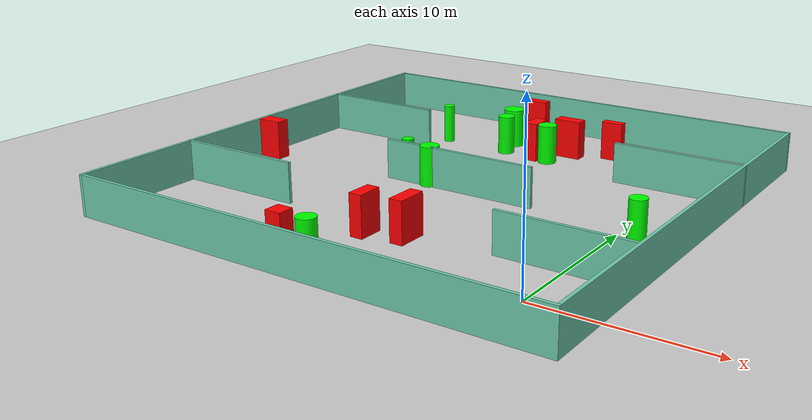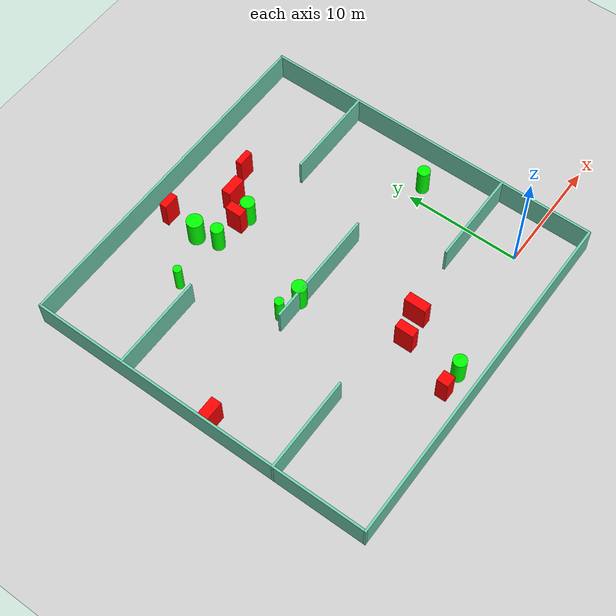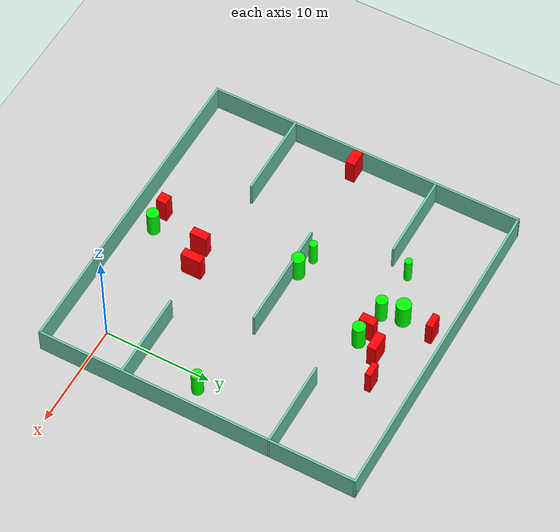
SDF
<sdf version="1.7">
 <world name="default">
  <light name="sun" type="directional">
   <pose>0 0 10 0 -0 0</pose>
   <diffuse>0.8 0.8 0.8 1</diffuse>
   <specular>0.2 0.2 0.2 1</specular>
   <attenuation>
    <range>1000</range>
    <constant>0.9</constant>
    <linear>0.01</linear>
    <quadratic>0.001</quadratic>
   </attenuation>
   <direction>-0.5 0.1 -0.9</direction>
   <spot><inner_angle>0</inner_angle><outer_angle>0</outer_angle><falloff>0</falloff></spot>
  </light>
  <model name="ground_plane">
   <static>1</static>
   <link name="link">
    <collision name="collision">
     <geometry><plane><normal>0 0 1</normal><size>100 100</size></plane></geometry>
     <surface>
      <contact><collide_bitmask>65535</collide_bitmask></contact>
      <friction><ode><mu>100</mu><mu2>50</mu2></ode></friction>
     </surface>
    </collision>
    <visual name="visual">
     <cast_shadows>0</cast_shadows>
     <geometry><plane><normal>0 0 1</normal><size>100 100</size></plane></geometry>
     <material>
      <script><uri>file://media/materials/scripts/gazebo.material</uri><name>Gazebo/Grey</name></script>
     </material>
    </visual>
   </link>
  </model>
  <gravity>0 0 -9.8</gravity>
  <magnetic_field>6e-06 2.3e-05 -4.2e-05</magnetic_field>
  <atmosphere type="adiabatic"/>
  <physics type="ode">
   <max_step_size>0.001</max_step_size>
   <real_time_factor>1</real_time_factor>
   <real_time_update_rate>1000</real_time_update_rate>
  </physics>
  <scene><ambient>0.4 0.4 0.4 1</ambient><background>0.7 0.7 0.7 1</background><shadows>1</shadows></scene>
  <spherical_coordinates>
   <surface_model>EARTH_WGS84</surface_model>
   <latitude_deg>0</latitude_deg>
   <longitude_deg>0</longitude_deg>
   <elevation>0</elevation>
   <heading_deg>0</heading_deg>
  </spherical_coordinates>
  <model name="my_base_walls">
   <link name="Wall_10">
    <collision name="Wall_10_Collision">
     <geometry><box><size>8.2 0.2 2.5</size></box></geometry>
     <pose>0 0 1.25 0 -0 0</pose>
    </collision>
    <visual name="Wall_10_Visual">
     <pose>0 0 1.25 0 -0 0</pose>
     <geometry><box><size>8.2 0.2 2.5</size></box></geometry>
     <material>
      <script><uri>file://media/materials/scripts/gazebo.material</uri><name>Gazebo/Grey</name></script>
      <ambient>0.435294 0.796078 0.67451 1</ambient>
     </material>
     <meta><layer>0</layer></meta>
    </visual>
    <pose>-11 -7 0 0 -0 0</pose>
   </link>
   <link name="Wall_12">
    <collision name="Wall_12_Collision">
     <geometry><box><size>8.2 0.2 2.5</size></box></geometry>
     <pose>0 0 1.25 0 -0 0</pose>
    </collision>
    <visual name="Wall_12_Visual">
     <pose>0 0 1.25 0 -0 0</pose>
     <geometry><box><size>8.2 0.2 2.5</size></box></geometry>
     <material>
      <script><uri>file://media/materials/scripts/gazebo.material</uri><name>Gazebo/Grey</name></script>
      <ambient>0.435294 0.796078 0.67451 1</ambient>
     </material>
     <meta><layer>0</layer></meta>
    </visual>
    <pose>-11 7 0 0 -0 0</pose>
   </link>
   <link name="Wall_14">
    <collision name="Wall_14_Collision">
     <geometry><box><size>8.2 0.2 2.5</size></box></geometry>
     <pose>0 0 1.25 0 -0 0</pose>
    </collision>
    <visual name="Wall_14_Visual">
     <pose>0 0 1.25 0 -0 0</pose>
     <geometry><box><size>8.2 0.2 2.5</size></box></geometry>
     <material>
      <script><uri>file://media/materials/scripts/gazebo.material</uri><name>Gazebo/Grey</name></script>
      <ambient>0.435294 0.796078 0.67451 1</ambient>
     </material>
     <meta><layer>0</layer></meta>
    </visual>
    <pose>11 7 0 0 -0 3.14159</pose>
   </link>
   <link name="Wall_16">
    <collision name="Wall_16_Collision">
     <geometry><box><size>10.2 0.2 2.5</size></box></geometry>
     <pose>0 0 1.25 0 -0 0</pose>
    </collision>
    <visual name="Wall_16_Visual">
     <pose>0 0 1.25 0 -0 0</pose>
     <geometry><box><size>10.2 0.2 2.5</size></box></geometry>
     <material>
      <script><uri>file://media/materials/scripts/gazebo.material</uri><name>Gazebo/Grey</name></script>
      <ambient>0.435294 0.796078 0.67451 1</ambient>
     </material>
     <meta><layer>0</layer></meta>
    </visual>
    <pose>0 0 0 0 -0 3.14159</pose>
   </link>
   <link name="Wall_2">
    <collision name="Wall_2_Collision">
     <geometry><box><size>30.2 0.2 2.5</size></box></geometry>
     <pose>0 0 1.25 0 -0 0</pose>
    </collision>
    <visual name="Wall_2_Visual">
     <pose>0 0 1.25 0 -0 0</pose>
     <geometry><box><size>30.2 0.2 2.5</size></box></geometry>
     <material>
      <script><uri>file://media/materials/scripts/gazebo.material</uri><name>Gazebo/Grey</name></script>
      <ambient>0.435294 0.796078 0.67451 1</ambient>
     </material>
     <meta><layer>0</layer></meta>
    </visual>
    <pose>0 -15 0 0 -0 3.14159</pose>
   </link>
   <link name="Wall_3">
    <collision name="Wall_3_Collision">
     <geometry><box><size>30.2 0.2 2.5</size></box></geometry>
     <pose>0 0 1.25 0 -0 0</pose>
    </collision>
    <visual name="Wall_3_Visual">
     <pose>0 0 1.25 0 -0 0</pose>
     <geometry><box><size>30.2 0.2 2.5</size></box></geometry>
     <material>
      <script><uri>file://media/materials/scripts/gazebo.material</uri><name>Gazebo/Grey</name></script>
      <ambient>0.435294 0.796078 0.67451 1</ambient>
     </material>
     <meta><layer>0</layer></meta>
    </visual>
    <pose>-15 0 0 0 -0 1.5708</pose>
   </link>
   <link name="Wall_4">
    <collision name="Wall_4_Collision">
     <geometry><box><size>30.2 0.2 2.5</size></box></geometry>
     <pose>0 0 1.25 0 -0 0</pose>
    </collision>
    <visual name="Wall_4_Visual">
     <pose>0 0 1.25 0 -0 0</pose>
     <geometry><box><size>30.2 0.2 2.5</size></box></geometry>
     <material>
      <script><uri>file://media/materials/scripts/gazebo.material</uri><name>Gazebo/Grey</name></script>
      <ambient>0.435294 0.796078 0.67451 1</ambient>
     </material>
     <meta><layer>0</layer></meta>
    </visual>
    <pose>0 15 0 0 -0 0</pose>
   </link>
   <link name="Wall_6">
    <collision name="Wall_6_Collision">
     <geometry><box><size>30.2 0.2 2.5</size></box></geometry>
     <pose>0 0 1.25 0 -0 0</pose>
    </collision>
    <visual name="Wall_6_Visual">
     <pose>0 0 1.25 0 -0 0</pose>
     <geometry><box><size>30.2 0.2 2.5</size></box></geometry>
     <material>
      <script><uri>file://media/materials/scripts/gazebo.material</uri><name>Gazebo/Grey</name></script>
      <ambient>0.435294 0.796078 0.67451 1</ambient>
     </material>
     <meta><layer>0</layer></meta>
    </visual>
    <pose>15 0 0 0 -0 1.5708</pose>
   </link>
   <link name="Wall_8">
    <collision name="Wall_8_Collision">
     <geometry><box><size>8.2 0.2 2.5</size></box></geometry>
     <pose>0 0 1.25 0 -0 0</pose>
    </collision>
    <visual name="Wall_8_Visual">
     <pose>0 0 1.25 0 -0 0</pose>
     <geometry><box><size>8.2 0.2 2.5</size></box></geometry>
     <material>
      <script><uri>file://media/materials/scripts/gazebo.material</uri><name>Gazebo/Grey</name></script>
      <ambient>0.435294 0.796078 0.67451 1</ambient>
     </material>
     <meta><layer>0</layer></meta>
    </visual>
    <pose>11 -7 0 0 -0 3.14159</pose>
   </link>
   <static>1</static>
   <pose>-11 11 0 0 -0 0</pose>
  </model>
  <model name="cylinder1">
   <static>1</static>
   <link name="link">
    <inertial>
     <mass>1</mass>
     <inertia><ixx>0.5</ixx><ixy>0</ixy><ixz>0</ixz><iyy>0.5</iyy><iyz>0</iyz><izz>1</izz></inertia>
    </inertial>
    <collision name="collision">
     <geometry><cylinder><radius>0.35153633158195363</radius><length>2.5</length></cylinder></geometry>
    </collision>
    <visual name="visual">
     <geometry><cylinder><radius>0.35153633158195363</radius><length>2.5</length></cylinder></geometry>
     <material>
      <ambient>0 1 0 1</ambient>
      <diffuse>0 1 0 1</diffuse>
      <specular>0.1 0.1 0.1 1</specular>
      <emissive>0 0 0 0</emissive>
     </material>
    </visual>
   </link>
   <pose>-17.476145034652344 19.72782436465745 1.25 0 0 0</pose>
  </model>
  <model name="cylinder2">
   <static>1</static>
   <link name="link">
    <inertial>
     <mass>1</mass>
     <inertia><ixx>0.5</ixx><ixy>0</ixy><ixz>0</ixz><iyy>0.5</iyy><iyz>0</iyz><izz>1</izz></inertia>
    </inertial>
    <collision name="collision">
     <geometry><cylinder><radius>0.5285759826192503</radius><length>2.5</length></cylinder></geometry>
    </collision>
    <visual name="visual">
     <geometry><cylinder><radius>0.5285759826192503</radius><length>2.5</length></cylinder></geometry>
     <material>
      <ambient>0 1 0 1</ambient>
      <diffuse>0 1 0 1</diffuse>
      <specular>0.1 0.1 0.1 1</specular>
      <emissive>0 0 0 0</emissive>
     </material>
    </visual>
   </link>
   <pose>1.274703237215082 9.651066542261361 1.25 0 0 0</pose>
  </model>
  <model name="cylinder3">
   <static>1</static>
   <link name="link">
    <inertial>
     <mass>1</mass>
     <inertia><ixx>0.5</ixx><ixy>0</ixy><ixz>0</ixz><iyy>0.5</iyy><iyz>0</iyz><izz>1</izz></inertia>
    </inertial>
    <collision name="collision">
     <geometry><cylinder><radius>0.37723463876600527</radius><length>2.5</length></cylinder></geometry>
    </collision>
    <visual name="visual">
     <geometry><cylinder><radius>0.37723463876600527</radius><length>2.5</length></cylinder></geometry>
     <material>
      <ambient>0 1 0 1</ambient>
      <diffuse>0 1 0 1</diffuse>
      <specular>0.1 0.1 0.1 1</specular>
      <emissive>0 0 0 0</emissive>
     </material>
    </visual>
   </link>
   <pose>-15.136181443465514 11.718161549345906 1.25 0 0 0</pose>
  </model>
  <model name="cylinder4">
   <static>1</static>
   <link name="link">
    <inertial>
     <mass>1</mass>
     <inertia><ixx>0.5</ixx><ixy>0</ixy><ixz>0</ixz><iyy>0.5</iyy><iyz>0</iyz><izz>1</izz></inertia>
    </inertial>
    <collision name="collision">
     <geometry><cylinder><radius>0.6858372230969887</radius><length>2.5</length></cylinder></geometry>
    </collision>
    <visual name="visual">
     <geometry><cylinder><radius>0.6858372230969887</radius><length>2.5</length></cylinder></geometry>
     <material>
      <ambient>0 1 0 1</ambient>
      <diffuse>0 1 0 1</diffuse>
      <specular>0.1 0.1 0.1 1</specular>
      <emissive>0 0 0 0</emissive>
     </material>
    </visual>
   </link>
   <pose>-13.28783266476146 21.44425045863756 1.25 0 0 0</pose>
  </model>
  <model name="cylinder5">
   <static>1</static>
   <link name="link">
    <inertial>
     <mass>1</mass>
     <inertia><ixx>0.5</ixx><ixy>0</ixy><ixz>0</ixz><iyy>0.5</iyy><iyz>0</iyz><izz>1</izz></inertia>
    </inertial>
    <collision name="collision">
     <geometry><cylinder><radius>0.5316806659035819</radius><length>2.5</length></cylinder></geometry>
    </collision>
    <visual name="visual">
     <geometry><cylinder><radius>0.5316806659035819</radius><length>2.5</length></cylinder></geometry>
     <material>
      <ambient>0 1 0 1</ambient>
      <diffuse>0 1 0 1</diffuse>
      <specular>0.1 0.1 0.1 1</specular>
      <emissive>0 0 0 0</emissive>
     </material>
    </visual>
   </link>
   <pose>-12.795040878306114 19.601636793523483 1.25 0 0 0</pose>
  </model>
  <model name="cylinder6">
   <static>1</static>
   <link name="link">
    <inertial>
     <mass>1</mass>
     <inertia><ixx>0.5</ixx><ixy>0</ixy><ixz>0</ixz><iyy>0.5</iyy><iyz>0</iyz><izz>1</izz></inertia>
    </inertial>
    <collision name="collision">
     <geometry><cylinder><radius>0.6118597784652873</radius><length>2.5</length></cylinder></geometry>
    </collision>
    <visual name="visual">
     <geometry><cylinder><radius>0.6118597784652873</radius><length>2.5</length></cylinder></geometry>
     <material>
      <ambient>0 1 0 1</ambient>
      <diffuse>0 1 0 1</diffuse>
      <specular>0.1 0.1 0.1 1</specular>
      <emissive>0 0 0 0</emissive>
     </material>
    </visual>
   </link>
   <pose>-13.198200836576767 11.280023120172116 1.25 0 0 0</pose>
  </model>
  <model name="cylinder7">
   <static>1</static>
   <link name="link">
    <inertial>
     <mass>1</mass>
     <inertia><ixx>0.5</ixx><ixy>0</ixy><ixz>0</ixz><iyy>0.5</iyy><iyz>0</iyz><izz>1</izz></inertia>
    </inertial>
    <collision name="collision">
     <geometry><cylinder><radius>0.5970459663065196</radius><length>2.5</length></cylinder></geometry>
    </collision>
    <visual name="visual">
     <geometry><cylinder><radius>0.5970459663065196</radius><length>2.5</length></cylinder></geometry>
     <material>
      <ambient>0 1 0 1</ambient>
      <diffuse>0 1 0 1</diffuse>
      <specular>0.1 0.1 0.1 1</specular>
      <emissive>0 0 0 0</emissive>
     </material>
    </visual>
   </link>
   <pose>-9.459526255358114 19.19666636481591 1.25 0 0 0</pose>
  </model>
  <model name="cylinder8">
   <static>1</static>
   <link name="link">
    <inertial>
     <mass>1</mass>
     <inertia><ixx>0.5</ixx><ixy>0</ixy><ixz>0</ixz><iyy>0.5</iyy><iyz>0</iyz><izz>1</izz></inertia>
    </inertial>
    <collision name="collision">
     <geometry><cylinder><radius>0.5709466998918014</radius><length>2.5</length></cylinder></geometry>
    </collision>
    <visual name="visual">
     <geometry><cylinder><radius>0.5709466998918014</radius><length>2.5</length></cylinder></geometry>
     <material>
      <ambient>0 1 0 1</ambient>
      <diffuse>0 1 0 1</diffuse>
      <specular>0.1 0.1 0.1 1</specular>
      <emissive>0 0 0 0</emissive>
     </material>
    </visual>
   </link>
   <pose>-11.272777295380251 -2.0354373731820625 1.25 0 0 0</pose>
  </model>
  <model name="box1">
   <static>1</static>
   <link name="link">
    <inertial>
     <mass>1</mass>
     <inertia><ixx>0.083</ixx><ixy>0</ixy><ixz>0</ixz><iyy>0.083</iyy><iyz>0</iyz><izz>0.083</izz></inertia>
    </inertial>
    <collision name="collision">
     <geometry><box><size>0.8229345344814126 1.9023184112580245 2.5</size></box></geometry>
    </collision>
    <visual name="visual">
     <geometry><box><size>0.8229345344814126 1.9023184112580245 2.5</size></box></geometry>
     <material>
      <ambient>1 0 0 1</ambient>
      <diffuse>1 0 0 1</diffuse>
      <specular>0.1 0.1 0.1 1</specular>
      <emissive>0 0 0 0</emissive>
     </material>
    </visual>
    <sensor name="my_contact" type="contact">
     <contact><collision>box_collision</collision><topic>__default_topic__</topic></contact>
    </sensor>
   </link>
   <pose>-9.032181543393826 3.256516974181608 1.25 0 0 0</pose>
  </model>
  <model name="box2">
   <static>1</static>
   <link name="link">
    <inertial>
     <mass>1</mass>
     <inertia><ixx>0.083</ixx><ixy>0</ixy><ixz>0</ixz><iyy>0.083</iyy><iyz>0</iyz><izz>0.083</izz></inertia>
    </inertial>
    <collision name="collision">
     <geometry><box><size>1.0016678379224162 0.9912064561129541 2.5</size></box></geometry>
    </collision>
    <visual name="visual">
     <geometry><box><size>1.0016678379224162 0.9912064561129541 2.5</size></box></geometry>
     <material>
      <ambient>1 0 0 1</ambient>
      <diffuse>1 0 0 1</diffuse>
      <specular>0.1 0.1 0.1 1</specular>
      <emissive>0 0 0 0</emissive>
     </material>
    </visual>
    <sensor name="my_contact" type="contact">
     <contact><collision>box_collision</collision><topic>__default_topic__</topic></contact>
    </sensor>
   </link>
   <pose>-13.11694592631485 -2.0073384136513956 1.25 0 0 0</pose>
  </model>
  <model name="box3">
   <static>1</static>
   <link name="link">
    <inertial>
     <mass>1</mass>
     <inertia><ixx>0.083</ixx><ixy>0</ixy><ixz>0</ixz><iyy>0.083</iyy><iyz>0</iyz><izz>0.083</izz></inertia>
    </inertial>
    <collision name="collision">
     <geometry><box><size>1.7833456924740028 0.8237682809140713 2.5</size></box></geometry>
    </collision>
    <visual name="visual">
     <geometry><box><size>1.7833456924740028 0.8237682809140713 2.5</size></box></geometry>
     <material>
      <ambient>1 0 0 1</ambient>
      <diffuse>1 0 0 1</diffuse>
      <specular>0.1 0.1 0.1 1</specular>
      <emissive>0 0 0 0</emissive>
     </material>
    </visual>
    <sensor name="my_contact" type="contact">
     <contact><collision>box_collision</collision><topic>__default_topic__</topic></contact>
    </sensor>
   </link>
   <pose>-8.865868136538062 21.14438984707156 1.25 0 0 0</pose>
  </model>
  <model name="box4">
   <static>1</static>
   <link name="link">
    <inertial>
     <mass>1</mass>
     <inertia><ixx>0.083</ixx><ixy>0</ixy><ixz>0</ixz><iyy>0.083</iyy><iyz>0</iyz><izz>0.083</izz></inertia>
    </inertial>
    <collision name="collision">
     <geometry><box><size>1.608086384951433 0.8976197033456244 2.5</size></box></geometry>
    </collision>
    <visual name="visual">
     <geometry><box><size>1.608086384951433 0.8976197033456244 2.5</size></box></geometry>
     <material>
      <ambient>1 0 0 1</ambient>
      <diffuse>1 0 0 1</diffuse>
      <specular>0.1 0.1 0.1 1</specular>
      <emissive>0 0 0 0</emissive>
     </material>
    </visual>
    <sensor name="my_contact" type="contact">
     <contact><collision>box_collision</collision><topic>__default_topic__</topic></contact>
    </sensor>
   </link>
   <pose>-25.10804342481018 10.384040375656868 1.25 0 0 0</pose>
  </model>
  <model name="box5">
   <static>1</static>
   <link name="link">
    <inertial>
     <mass>1</mass>
     <inertia><ixx>0.083</ixx><ixy>0</ixy><ixz>0</ixz><iyy>0.083</iyy><iyz>0</iyz><izz>0.083</izz></inertia>
    </inertial>
    <collision name="collision">
     <geometry><box><size>0.8212031269673201 1.4245719219706272 2.5</size></box></geometry>
    </collision>
    <visual name="visual">
     <geometry><box><size>0.8212031269673201 1.4245719219706272 2.5</size></box></geometry>
     <material>
      <ambient>1 0 0 1</ambient>
      <diffuse>1 0 0 1</diffuse>
      <specular>0.1 0.1 0.1 1</specular>
      <emissive>0 0 0 0</emissive>
     </material>
    </visual>
    <sensor name="my_contact" type="contact">
     <contact><collision>box_collision</collision><topic>__default_topic__</topic></contact>
    </sensor>
   </link>
   <pose>-10.492977276108014 19.531244132549585 1.25 0 0 0</pose>
  </model>
  <model name="box6">
   <static>1</static>
   <link name="link">
    <inertial>
     <mass>1</mass>
     <inertia><ixx>0.083</ixx><ixy>0</ixy><ixz>0</ixz><iyy>0.083</iyy><iyz>0</iyz><izz>0.083</izz></inertia>
    </inertial>
    <collision name="collision">
     <geometry><box><size>1.3920863630005846 0.6318257219575439 2.5</size></box></geometry>
    </collision>
    <visual name="visual">
     <geometry><box><size>1.3920863630005846 0.6318257219575439 2.5</size></box></geometry>
     <material>
      <ambient>1 0 0 1</ambient>
      <diffuse>1 0 0 1</diffuse>
      <specular>0.1 0.1 0.1 1</specular>
      <emissive>0 0 0 0</emissive>
     </material>
    </visual>
    <sensor name="my_contact" type="contact">
     <contact><collision>box_collision</collision><topic>__default_topic__</topic></contact>
    </sensor>
   </link>
   <pose>-13.006743363999462 24.328655042726542 1.25 0 0 0</pose>
  </model>
  <model name="box7">
   <static>1</static>
   <link name="link">
    <inertial>
     <mass>1</mass>
     <inertia><ixx>0.083</ixx><ixy>0</ixy><ixz>0</ixz><iyy>0.083</iyy><iyz>0</iyz><izz>0.083</izz></inertia>
    </inertial>
    <collision name="collision">
     <geometry><box><size>0.8025084038003856 1.6022734006941297 2.5</size></box></geometry>
    </collision>
    <visual name="visual">
     <geometry><box><size>0.8025084038003856 1.6022734006941297 2.5</size></box></geometry>
     <material>
      <ambient>1 0 0 1</ambient>
      <diffuse>1 0 0 1</diffuse>
      <specular>0.1 0.1 0.1 1</specular>
      <emissive>0 0 0 0</emissive>
     </material>
    </visual>
    <sensor name="my_contact" type="contact">
     <contact><collision>box_collision</collision><topic>__default_topic__</topic></contact>
    </sensor>
   </link>
   <pose>-11.349722391258947 2.6579423918051237 1.25 0 0 0</pose>
  </model>
  <model name="box8">
   <static>1</static>
   <link name="link">
    <inertial>
     <mass>1</mass>
     <inertia><ixx>0.083</ixx><ixy>0</ixy><ixz>0</ixz><iyy>0.083</iyy><iyz>0</iyz><izz>0.083</izz></inertia>
    </inertial>
    <collision name="collision">
     <geometry><box><size>1.39372155246644 0.5527857404150517 2.5</size></box></geometry>
    </collision>
    <visual name="visual">
     <geometry><box><size>1.39372155246644 0.5527857404150517 2.5</size></box></geometry>
     <material>
      <ambient>1 0 0 1</ambient>
      <diffuse>1 0 0 1</diffuse>
      <specular>0.1 0.1 0.1 1</specular>
      <emissive>0 0 0 0</emissive>
     </material>
    </visual>
    <sensor name="my_contact" type="contact">
     <contact><collision>box_collision</collision><topic>__default_topic__</topic></contact>
    </sensor>
   </link>
   <pose>-6.19088947656731 22.120270963876408 1.25 0 0 0</pose>
  </model>
 </world>
</sdf>
